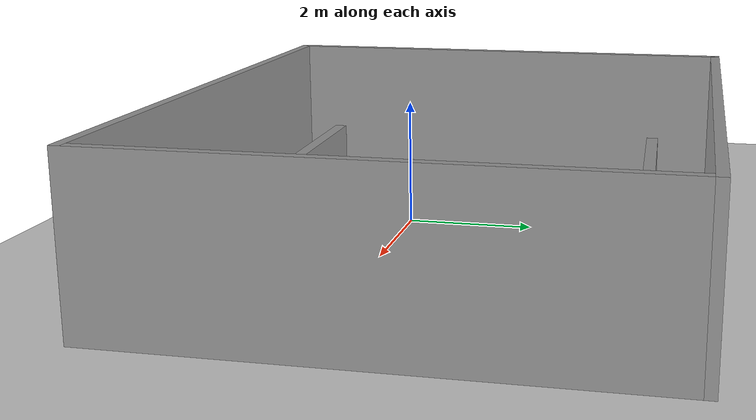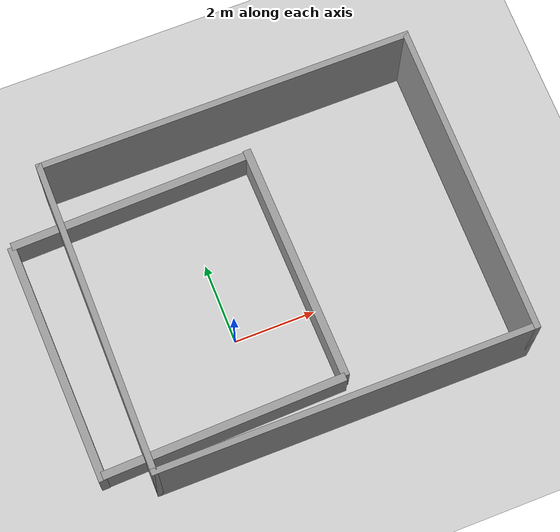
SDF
<sdf version="1.6">
 <world name="default">
  <light name="sun" type="directional">
   <pose>0 0 10 0 -0 0</pose>
   <diffuse>0.8 0.8 0.8 1</diffuse>
   <specular>0.1 0.1 0.1 1</specular>
   <attenuation>
    <range>1000</range>
    <constant>0.9</constant>
    <linear>0.01</linear>
    <quadratic>0.001</quadratic>
   </attenuation>
   <direction>-0.5 0.5 -1</direction>
  </light>
  <model name="ground_plane">
   <static>1</static>
   <link name="link">
    <collision name="collision">
     <geometry><plane><normal>0 0 1</normal><size>100 100</size></plane></geometry>
     <surface><friction><ode><mu>100</mu><mu2>50</mu2></ode></friction></surface>
    </collision>
    <visual name="visual">
     <cast_shadows>0</cast_shadows>
     <geometry><plane><normal>0 0 1</normal><size>100 100</size></plane></geometry>
     <material>
      <script><uri>file://media/materials/scripts/gazebo.material</uri><name>Gazebo/Grey</name></script>
     </material>
    </visual>
   </link>
  </model>
  <gravity>0 0 -9.8</gravity>
  <magnetic_field>6e-06 2.3e-05 -4.2e-05</magnetic_field>
  <atmosphere type="adiabatic"/>
  <physics name="default_physics" default="0" type="ode">
   <max_step_size>0.001</max_step_size>
   <real_time_factor>1</real_time_factor>
   <real_time_update_rate>1000</real_time_update_rate>
  </physics>
  <scene><ambient>0.4 0.4 0.4 1</ambient><background>0.7 0.7 0.7 1</background><shadows>1</shadows></scene>
  <spherical_coordinates>
   <surface_model>EARTH_WGS84</surface_model>
   <latitude_deg>0</latitude_deg>
   <longitude_deg>0</longitude_deg>
   <elevation>0</elevation>
   <heading_deg>0</heading_deg>
  </spherical_coordinates>
  <model name="rosbot_sim_room_2">
   <link name="link">
    <pose>-0 -1.38826 0 0 -0 0</pose>
    <inertial>
     <mass>1</mass>
     <inertia>
      <ixx>0.166667</ixx>
      <ixy>0</ixy>
      <ixz>0</ixz>
      <iyy>0.166667</iyy>
      <iyz>0</iyz>
      <izz>0.166667</izz>
     </inertia>
    </inertial>
    <visual name="visual">
     <geometry><box><size>6 0.2 1</size></box></geometry>
     <material>
      <script><name>Gazebo/Grey</name><uri>file://media/materials/scripts/gazebo.material</uri></script>
      <ambient>0.3 0.3 0.3 1</ambient>
      <diffuse>0.7 0.7 0.7 1</diffuse>
      <specular>0.01 0.01 0.01 1</specular>
      <emissive>0 0 0 1</emissive>
      <shader type="vertex"><normal_map>__default__</normal_map></shader>
     </material>
    </visual>
    <collision name="collision">
     <geometry><box><size>6 0.2 1</size></box></geometry>
     <surface>
      <friction>
       <ode><mu>1</mu><mu2>1</mu2><fdir1>0 0 0</fdir1><slip1>0</slip1><slip2>0</slip2></ode>
       <torsional>
        <coefficient>1</coefficient>
        <patch_radius>0</patch_radius>
        <surface_radius>0</surface_radius>
        <use_patch_radius>1</use_patch_radius>
        <ode><slip>0</slip></ode>
       </torsional>
      </friction>
      <bounce><restitution_coefficient>0</restitution_coefficient><threshold>1e+06</threshold></bounce>
      <contact>
       <collide_without_contact>0</collide_without_contact>
       <collide_without_contact_bitmask>1</collide_without_contact_bitmask>
       <collide_bitmask>1</collide_bitmask>
       <ode>
        <soft_cfm>0</soft_cfm>
        <soft_erp>0.2</soft_erp>
        <kp>1e+13</kp>
        <kd>1</kd>
        <max_vel>0.01</max_vel>
        <min_depth>0</min_depth>
       </ode>
       <bullet>
        <split_impulse>1</split_impulse>
        <split_impulse_penetration_threshold>-0.01</split_impulse_penetration_threshold>
        <soft_cfm>0</soft_cfm>
        <soft_erp>0.2</soft_erp>
        <kp>1e+13</kp>
        <kd>1</kd>
       </bullet>
      </contact>
     </surface>
    </collision>
   </link>
   <link name="link_0">
    <pose>-3.01111 1.50006 4e-06 1.2e-05 0.000372 -0.001707</pose>
    <inertial>
     <mass>1</mass>
     <inertia>
      <ixx>0.166667</ixx>
      <ixy>0</ixy>
      <ixz>0</ixz>
      <iyy>0.166667</iyy>
      <iyz>0</iyz>
      <izz>0.166667</izz>
     </inertia>
    </inertial>
    <visual name="visual">
     <geometry><box><size>0.2 6 1</size></box></geometry>
     <material>
      <lighting>1</lighting>
      <script><uri>file://media/materials/scripts/gazebo.material</uri><name>Gazebo/Grey</name></script>
      <ambient>0.3 0.3 0.3 1</ambient>
      <diffuse>0.7 0.7 0.7 1</diffuse>
      <specular>0.01 0.01 0.01 1</specular>
      <emissive>0 0 0 1</emissive>
      <shader type="vertex"><normal_map>__default__</normal_map></shader>
     </material>
    </visual>
    <collision name="collision">
     <geometry><box><size>0.2 6 1</size></box></geometry>
     <surface>
      <friction>
       <ode><mu>1</mu><mu2>1</mu2><fdir1>0 0 0</fdir1><slip1>0</slip1><slip2>0</slip2></ode>
       <torsional>
        <coefficient>1</coefficient>
        <patch_radius>0</patch_radius>
        <surface_radius>0</surface_radius>
        <use_patch_radius>1</use_patch_radius>
        <ode><slip>0</slip></ode>
       </torsional>
      </friction>
      <bounce><restitution_coefficient>0</restitution_coefficient><threshold>1e+06</threshold></bounce>
      <contact>
       <collide_without_contact>0</collide_without_contact>
       <collide_without_contact_bitmask>1</collide_without_contact_bitmask>
       <collide_bitmask>1</collide_bitmask>
       <ode>
        <soft_cfm>0</soft_cfm>
        <soft_erp>0.2</soft_erp>
        <kp>1e+13</kp>
        <kd>1</kd>
        <max_vel>0.01</max_vel>
        <min_depth>0</min_depth>
       </ode>
       <bullet>
        <split_impulse>1</split_impulse>
        <split_impulse_penetration_threshold>-0.01</split_impulse_penetration_threshold>
        <soft_cfm>0</soft_cfm>
        <soft_erp>0.2</soft_erp>
        <kp>1e+13</kp>
        <kd>1</kd>
       </bullet>
      </contact>
     </surface>
    </collision>
   </link>
   <link name="link_0_clone">
    <pose>3.01161 1.6243 -0.001096 2.3e-05 0.000744 -0.003414</pose>
    <inertial>
     <mass>1</mass>
     <inertia>
      <ixx>0.166667</ixx>
      <ixy>0</ixy>
      <ixz>0</ixz>
      <iyy>0.166667</iyy>
      <iyz>0</iyz>
      <izz>0.166667</izz>
     </inertia>
    </inertial>
    <visual name="visual">
     <geometry><box><size>0.2 6 1</size></box></geometry>
     <material>
      <lighting>1</lighting>
      <script><uri>file://media/materials/scripts/gazebo.material</uri><name>Gazebo/Grey</name></script>
      <ambient>0.3 0.3 0.3 1</ambient>
      <diffuse>0.7 0.7 0.7 1</diffuse>
      <specular>0.01 0.01 0.01 1</specular>
      <emissive>0 0 0 1</emissive>
      <shader type="vertex"><normal_map>__default__</normal_map></shader>
     </material>
    </visual>
    <collision name="collision">
     <geometry><box><size>0.2 6 1</size></box></geometry>
     <surface>
      <friction>
       <ode><mu>1</mu><mu2>1</mu2><fdir1>0 0 0</fdir1><slip1>0</slip1><slip2>0</slip2></ode>
       <torsional>
        <coefficient>1</coefficient>
        <patch_radius>0</patch_radius>
        <surface_radius>0</surface_radius>
        <use_patch_radius>1</use_patch_radius>
        <ode><slip>0</slip></ode>
       </torsional>
      </friction>
      <bounce><restitution_coefficient>0</restitution_coefficient><threshold>1e+06</threshold></bounce>
      <contact>
       <collide_without_contact>0</collide_without_contact>
       <collide_without_contact_bitmask>1</collide_without_contact_bitmask>
       <collide_bitmask>1</collide_bitmask>
       <ode>
        <soft_cfm>0</soft_cfm>
        <soft_erp>0.2</soft_erp>
        <kp>1e+13</kp>
        <kd>1</kd>
        <max_vel>0.01</max_vel>
        <min_depth>0</min_depth>
       </ode>
       <bullet>
        <split_impulse>1</split_impulse>
        <split_impulse_penetration_threshold>-0.01</split_impulse_penetration_threshold>
        <soft_cfm>0</soft_cfm>
        <soft_erp>0.2</soft_erp>
        <kp>1e+13</kp>
        <kd>1</kd>
       </bullet>
      </contact>
     </surface>
    </collision>
   </link>
   <link name="link_clone">
    <pose>0 4.5 0 1.2e-05 0.000372 -0.001707</pose>
    <inertial>
     <mass>1</mass>
     <inertia>
      <ixx>0.166667</ixx>
      <ixy>0</ixy>
      <ixz>0</ixz>
      <iyy>0.166667</iyy>
      <iyz>0</iyz>
      <izz>0.166667</izz>
     </inertia>
    </inertial>
    <visual name="visual">
     <geometry><box><size>6 0.2 1</size></box></geometry>
     <material>
      <script><name>Gazebo/Grey</name><uri>file://media/materials/scripts/gazebo.material</uri></script>
      <ambient>0.3 0.3 0.3 1</ambient>
      <diffuse>0.7 0.7 0.7 1</diffuse>
      <specular>0.01 0.01 0.01 1</specular>
      <emissive>0 0 0 1</emissive>
      <shader type="vertex"><normal_map>__default__</normal_map></shader>
     </material>
    </visual>
    <collision name="collision">
     <geometry><box><size>6 0.2 1</size></box></geometry>
     <surface>
      <friction>
       <ode><mu>1</mu><mu2>1</mu2><fdir1>0 0 0</fdir1><slip1>0</slip1><slip2>0</slip2></ode>
       <torsional>
        <coefficient>1</coefficient>
        <patch_radius>0</patch_radius>
        <surface_radius>0</surface_radius>
        <use_patch_radius>1</use_patch_radius>
        <ode><slip>0</slip></ode>
       </torsional>
      </friction>
      <bounce><restitution_coefficient>0</restitution_coefficient><threshold>1e+06</threshold></bounce>
      <contact>
       <collide_without_contact>0</collide_without_contact>
       <collide_without_contact_bitmask>1</collide_without_contact_bitmask>
       <collide_bitmask>1</collide_bitmask>
       <ode>
        <soft_cfm>0</soft_cfm>
        <soft_erp>0.2</soft_erp>
        <kp>1e+13</kp>
        <kd>1</kd>
        <max_vel>0.01</max_vel>
        <min_depth>0</min_depth>
       </ode>
       <bullet>
        <split_impulse>1</split_impulse>
        <split_impulse_penetration_threshold>-0.01</split_impulse_penetration_threshold>
        <soft_cfm>0</soft_cfm>
        <soft_erp>0.2</soft_erp>
        <kp>1e+13</kp>
        <kd>1</kd>
       </bullet>
      </contact>
     </surface>
    </collision>
   </link>
   <static>0</static>
   <pose>-1.04017 -0.629846 0.495136 -4.2e-05 -0.001605 0.024226</pose>
  </model>
  <model name="robot_sim_room_3">
   <pose>1.65 1.07 0 0 -0 0</pose>
   <link name="Wall_39">
    <collision name="Wall_39_Collision">
     <geometry><box><size>9.25 0.15 2.5</size></box></geometry>
     <pose>0 0 1.25 0 -0 0</pose>
    </collision>
    <visual name="Wall_39_Visual">
     <pose>0 0 1.25 0 -0 0</pose>
     <geometry><box><size>9.25 0.15 2.5</size></box></geometry>
     <material>
      <script><uri>file://media/materials/scripts/gazebo.material</uri><name>Gazebo/Grey</name></script>
      <ambient>1 1 1 1</ambient>
     </material>
    </visual>
    <pose>0 -3.8 0 0 -0 0</pose>
   </link>
   <link name="Wall_40">
    <collision name="Wall_40_Collision">
     <geometry><box><size>7.75 0.15 2.5</size></box></geometry>
     <pose>0 0 1.25 0 -0 0</pose>
    </collision>
    <visual name="Wall_40_Visual">
     <pose>0 0 1.25 0 -0 0</pose>
     <geometry><box><size>7.75 0.15 2.5</size></box></geometry>
     <material>
      <script><uri>file://media/materials/scripts/gazebo.material</uri><name>Gazebo/Grey</name></script>
      <ambient>1 1 1 1</ambient>
     </material>
    </visual>
    <pose>4.55 0 0 0 -0 1.5708</pose>
   </link>
   <link name="Wall_41">
    <collision name="Wall_41_Collision">
     <geometry><box><size>9.25 0.15 2.5</size></box></geometry>
     <pose>0 0 1.25 0 -0 0</pose>
    </collision>
    <visual name="Wall_41_Visual">
     <pose>0 0 1.25 0 -0 0</pose>
     <geometry><box><size>9.25 0.15 2.5</size></box></geometry>
     <material>
      <script><uri>file://media/materials/scripts/gazebo.material</uri><name>Gazebo/Grey</name></script>
      <ambient>1 1 1 1</ambient>
     </material>
    </visual>
    <pose>0 3.8 0 0 -0 3.14159</pose>
   </link>
   <link name="Wall_42">
    <collision name="Wall_42_Collision">
     <geometry><box><size>7.75 0.15 2.5</size></box></geometry>
     <pose>0 0 1.25 0 -0 0</pose>
    </collision>
    <visual name="Wall_42_Visual">
     <pose>0 0 1.25 0 -0 0</pose>
     <geometry><box><size>7.75 0.15 2.5</size></box></geometry>
     <material>
      <script><uri>file://media/materials/scripts/gazebo.material</uri><name>Gazebo/Grey</name></script>
      <ambient>1 1 1 1</ambient>
     </material>
    </visual>
    <pose>-4.55 0 0 0 0 -1.5708</pose>
   </link>
   <static>1</static>
  </model>
 </world>
</sdf>
